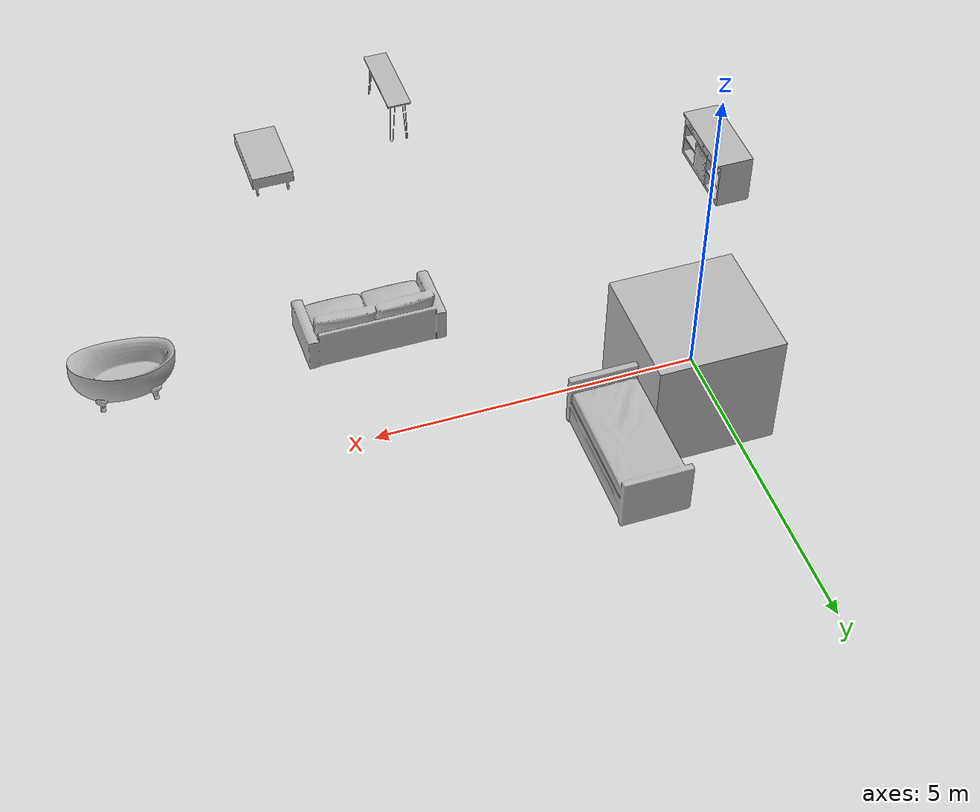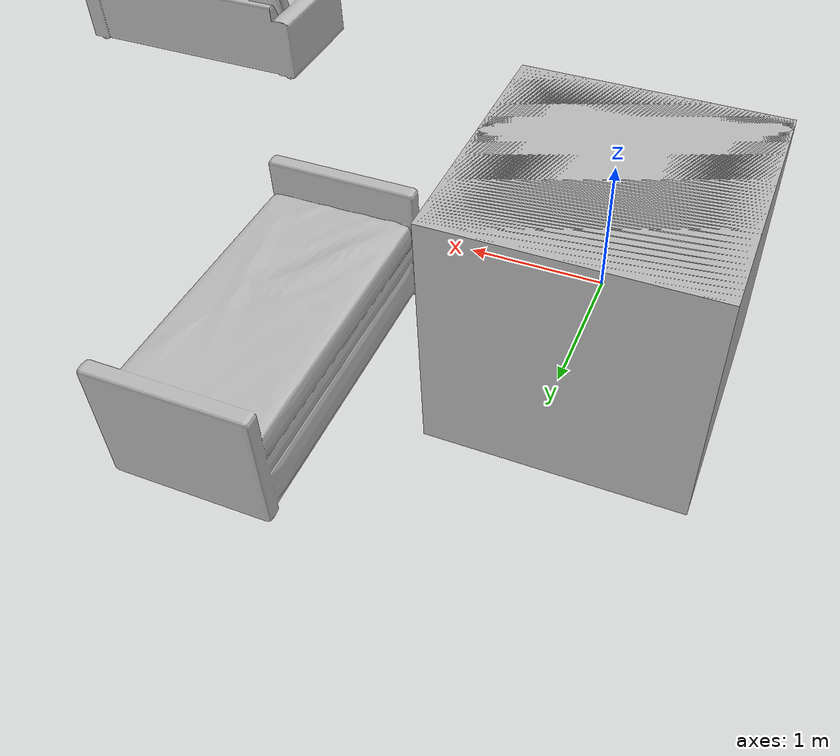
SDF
<sdf version="1.6">
 <world name="generation_fznnc8kb2ps3_world_1">
  <include><uri>model://sun</uri></include>
  <model name="DaybedSets_O4f4dc74f7857_lod0_5">
   <include>
    <uri>model://DaybedSets_O4f4dc74f7857_lod0</uri>
    <pose>1.7000000000000002 1.6000000596046449 0.0 0.0 0.0 0.0</pose>
    <static>true</static>
   </include>
  </model>
  <model name="Sofas_Oae268ae3eb42_lod0_10">
   <include>
    <uri>model://Sofas_Oae268ae3eb42_lod0</uri>
    <pose>4.449963760375977 -2.080874240398407 0.0 0.0 0.0 0.0</pose>
    <static>true</static>
   </include>
  </model>
  <model name="CoffeeTables_O73b15e86a72b_lod0_12">
   <include>
    <uri>model://CoffeeTables_O73b15e86a72b_lod0</uri>
    <pose>5.012157693505287 -6.198936772346497 0.0 0.0 0.0 4.71</pose>
    <static>true</static>
   </include>
  </model>
  <model name="SofaTables_O37bb89b6452b_lod0_13">
   <include>
    <uri>model://SofaTables_O37bb89b6452b_lod0</uri>
    <pose>2.6523663938045505 -6.89942433834076 0.0 0.0 0.0 1.57</pose>
    <static>true</static>
   </include>
  </model>
  <model name="Bathtub_82fff6c60a44_lod0_18">
   <include>
    <uri>model://Bathtub_82fff6c60a44_lod0</uri>
    <pose>8.251596927642822 -2.050035554170609 0.0 0.0 0.0 1.5699999999999994</pose>
    <static>true</static>
   </include>
  </model>
  <model name="CounterWithStorage_f5c803ebd10e_lod0_23">
   <include>
    <uri>model://CounterWithStorage_f5c803ebd10e_lod0</uri>
    <pose>-1.9966953992843628 -3.7570008039474487 0.0 0.0 0.0 1.57</pose>
    <static>true</static>
   </include>
  </model>
  <model name="wall_0">
   <include><uri>model://generation_fznnc8kb2ps3_world_1/wall_0</uri><static>true</static></include>
  </model>
  <model name="wall_1">
   <include><uri>model://generation_fznnc8kb2ps3_world_1/wall_1</uri><static>true</static></include>
  </model>
  <model name="wall_10">
   <include><uri>model://generation_fznnc8kb2ps3_world_1/wall_10</uri><static>true</static></include>
  </model>
  <model name="wall_11">
   <include><uri>model://generation_fznnc8kb2ps3_world_1/wall_11</uri><static>true</static></include>
  </model>
  <model name="wall_12">
   <include><uri>model://generation_fznnc8kb2ps3_world_1/wall_12</uri><static>true</static></include>
  </model>
  <model name="wall_13">
   <include><uri>model://generation_fznnc8kb2ps3_world_1/wall_13</uri><static>true</static></include>
  </model>
  <model name="wall_14">
   <include><uri>model://generation_fznnc8kb2ps3_world_1/wall_14</uri><static>true</static></include>
  </model>
  <model name="wall_15">
   <include><uri>model://generation_fznnc8kb2ps3_world_1/wall_15</uri><static>true</static></include>
  </model>
  <model name="floor_Bedroom">
   <include><uri>model://generation_fznnc8kb2ps3_world_1/floor_Bedroom</uri><static>true</static></include>
  </model>
  <model name="floor_Living room">
   <include><uri>model://generation_fznnc8kb2ps3_world_1/floor_Living room</uri><static>true</static></include>
  </model>
  <model name="floor_Bathroom">
   <include><uri>model://generation_fznnc8kb2ps3_world_1/floor_Bathroom</uri><static>true</static></include>
  </model>
  <model name="floor_Kitchen">
   <include><uri>model://generation_fznnc8kb2ps3_world_1/floor_Kitchen</uri><static>true</static></include>
  </model>
 </world>
</sdf>

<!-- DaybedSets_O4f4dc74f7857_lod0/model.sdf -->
<sdf version="1.6">
	<model name="DaybedSets_O4f4dc74f7857_lod0">
		<link name="main_link">
			<visual name="visual_RootNode">
				<geometry>
					<mesh>
						<uri>model://DaybedSets_O4f4dc74f7857_lod0/meshes/visual_RootNode.dae</uri>
					</mesh>
				</geometry>
			</visual>
			<collision name="collision_RootNode_lod0_0">
				<geometry>
					<mesh>
						<uri>model://DaybedSets_O4f4dc74f7857_lod0/meshes/collision_RootNode_lod0_0.dae</uri>
					</mesh>
				</geometry>
			</collision>
		</link>
	</model>
</sdf>

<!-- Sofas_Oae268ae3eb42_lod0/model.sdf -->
<sdf version="1.6">
	<model name="Sofas_Oae268ae3eb42_lod0">
		<link name="main_link">
			<visual name="visual_RootNode">
				<geometry>
					<mesh>
						<uri>model://Sofas_Oae268ae3eb42_lod0/meshes/visual_RootNode.dae</uri>
					</mesh>
				</geometry>
			</visual>
			<collision name="collision_RootNode_lod0_0">
				<geometry>
					<mesh>
						<uri>model://Sofas_Oae268ae3eb42_lod0/meshes/collision_RootNode_lod0_0.dae</uri>
					</mesh>
				</geometry>
			</collision>
		</link>
	</model>
</sdf>

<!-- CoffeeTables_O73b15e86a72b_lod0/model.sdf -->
<sdf version="1.6">
	<model name="CoffeeTables_O73b15e86a72b_lod0">
		<link name="main_link">
			<visual name="visual_RootNode">
				<geometry>
					<mesh>
						<uri>model://CoffeeTables_O73b15e86a72b_lod0/meshes/visual_RootNode.dae</uri>
					</mesh>
				</geometry>
			</visual>
			<collision name="collision_RootNode_lod0_0">
				<geometry>
					<mesh>
						<uri>model://CoffeeTables_O73b15e86a72b_lod0/meshes/collision_RootNode_lod0_0.dae</uri>
					</mesh>
				</geometry>
			</collision>
		</link>
	</model>
</sdf>

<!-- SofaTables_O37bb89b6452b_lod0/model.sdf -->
<sdf version="1.6">
	<model name="SofaTables_O37bb89b6452b_lod0">
		<link name="main_link">
			<visual name="visual_RootNode">
				<geometry>
					<mesh>
						<uri>model://SofaTables_O37bb89b6452b_lod0/meshes/visual_RootNode.dae</uri>
					</mesh>
				</geometry>
			</visual>
			<collision name="collision_RootNode_lod0_0">
				<geometry>
					<mesh>
						<uri>model://SofaTables_O37bb89b6452b_lod0/meshes/collision_RootNode_lod0_0.dae</uri>
					</mesh>
				</geometry>
			</collision>
		</link>
	</model>
</sdf>

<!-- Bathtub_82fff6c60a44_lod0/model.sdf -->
<sdf version='1.6'>
  <model name='01_Bathtub'>
    <link name='body'>
	  <inertial>
        <mass>60</mass>
        <pose frame=''>0 0 0 0 0 0</pose>
        <inertia>
          <ixx>15.88898</ixx>
          <ixy>0</ixy>
          <ixz>0</ixz>
          <iyy>5.8269799</iyy>
          <iyz>0</iyz>
          <izz>15.538</izz>
        </inertia>
      </inertial>
      <pose frame=''>0 0 0 0 -0 0</pose>
      <self_collide>0</self_collide>
      <kinematic>0</kinematic>
      <gravity>1</gravity>
      <visual name='visual'>
        <geometry>
          <mesh>
            <uri>model://Bathtub_82fff6c60a44_lod0/meshes/visual_LowPoly_01_Bathtub.dae</uri>
          </mesh>
        </geometry>
		<meta> <layer> 1 </layer></meta>
      </visual>
      <collision name='collision_0'>
        <laser_retro>0</laser_retro>
        <max_contacts>10</max_contacts>
        <pose frame=''>0 0 0 0 -0 0</pose>
        <geometry>
          <mesh>
            <uri>model://Bathtub_82fff6c60a44_lod0/meshes/collision_01_Bathtub.dae</uri>
            <scale>1 1 1</scale>
          </mesh>
        </geometry>
		<surface>
          <friction>
            <ode>
              <mu>0.6</mu>
              <mu2>0.6</mu2>
              <fdir1>0 0 0</fdir1>
              <slip1>0</slip1>
              <slip2>0</slip2>
            </ode>
            <torsional>
              <coefficient>1</coefficient>
              <patch_radius>0</patch_radius>
              <surface_radius>0</surface_radius>
              <use_patch_radius>1</use_patch_radius>
              <ode>
                <slip>0</slip>
              </ode>
            </torsional>
          </friction>
        </surface>
      </collision>
    </link>
    <static>true</static>
  </model>
</sdf>

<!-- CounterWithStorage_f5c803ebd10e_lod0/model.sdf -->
<sdf version='1.6'>
  <model name='19_CounterWithStorage'>
    <link name='body'>
	  <inertial>
        <mass>40</mass>
        <pose frame=''>0 0 0 0 0 0</pose>
        <inertia>
          <ixx>3.35908</ixx>
          <ixy>0</ixy>
          <ixz>0</ixz>
          <iyy>8.22596</iyy>
          <iyz>0</iyz>
          <izz>6.57378</izz>
        </inertia>
      </inertial>
      <pose frame=''>0 0 0 0 -0 0</pose>
      <self_collide>0</self_collide>
      <kinematic>0</kinematic>
      <gravity>1</gravity>
      <visual name='visual'>
        <geometry>
          <mesh>
            <uri>model://CounterWithStorage_f5c803ebd10e_lod0/meshes/visual_LowPoly_19_CounterWithStorage.dae</uri>
          </mesh>
        </geometry>
		<meta> <layer> 1 </layer></meta>
      </visual>
      <collision name='collision_0'>
        <laser_retro>0</laser_retro>
        <max_contacts>10</max_contacts>
        <pose frame=''>0 0 0 0 -0 0</pose>
        <geometry>
          <mesh>
            <uri>model://CounterWithStorage_f5c803ebd10e_lod0/meshes/collision_19_CounterWithStorage.dae</uri>
            <scale>1 1 1</scale>
          </mesh>
        </geometry>
		<surface>
          <friction>
            <ode>
              <mu>0.6</mu>
              <mu2>0.6</mu2>
              <fdir1>0 0 0</fdir1>
              <slip1>0</slip1>
              <slip2>0</slip2>
            </ode>
            <torsional>
              <coefficient>1</coefficient>
              <patch_radius>0</patch_radius>
              <surface_radius>0</surface_radius>
              <use_patch_radius>1</use_patch_radius>
              <ode>
                <slip>0</slip>
              </ode>
            </torsional>
          </friction>
        </surface>
      </collision>
    </link>
    <static>true</static>
  </model>
</sdf>

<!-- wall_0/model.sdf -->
<sdf version="1.6">
  <model name="wall_0">
    <static>true</static>
    <link name="link">
      <collision name="collision">
        <pose>0 0 0 0 0 0</pose>
        <geometry>
          <mesh>
            <uri>model://generation_fznnc8kb2ps3_world_1/wall_0/meshes/wall_0.dae</uri>
            <scale>1 1 1</scale>
          </mesh>
        </geometry>
      </collision>
      <visual name="visual">
        <meta>
          <layer>0</layer>
        </meta>
        <pose>0 0 0 0 0 0</pose>
        <geometry>
          <mesh>
            <uri>model://generation_fznnc8kb2ps3_world_1/wall_0/meshes/wall_0.dae</uri>
            <scale>1 1 1</scale>
          </mesh>
        </geometry>
      </visual>
    </link>
  </model>
</sdf>

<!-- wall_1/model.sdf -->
<sdf version="1.6">
  <model name="wall_1">
    <static>true</static>
    <link name="link">
      <collision name="collision">
        <pose>0 0 0 0 0 0</pose>
        <geometry>
          <mesh>
            <uri>model://generation_fznnc8kb2ps3_world_1/wall_1/meshes/wall_1.dae</uri>
            <scale>1 1 1</scale>
          </mesh>
        </geometry>
      </collision>
      <visual name="visual">
        <meta>
          <layer>0</layer>
        </meta>
        <pose>0 0 0 0 0 0</pose>
        <geometry>
          <mesh>
            <uri>model://generation_fznnc8kb2ps3_world_1/wall_1/meshes/wall_1.dae</uri>
            <scale>1 1 1</scale>
          </mesh>
        </geometry>
      </visual>
    </link>
  </model>
</sdf>

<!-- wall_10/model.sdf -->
<sdf version="1.6">
  <model name="wall_10">
    <static>true</static>
    <link name="link">
      <collision name="collision">
        <pose>0 0 0 0 0 0</pose>
        <geometry>
          <mesh>
            <uri>model://generation_fznnc8kb2ps3_world_1/wall_10/meshes/wall_10.dae</uri>
            <scale>1 1 1</scale>
          </mesh>
        </geometry>
      </collision>
      <visual name="visual">
        <meta>
          <layer>0</layer>
        </meta>
        <pose>0 0 0 0 0 0</pose>
        <geometry>
          <mesh>
            <uri>model://generation_fznnc8kb2ps3_world_1/wall_10/meshes/wall_10.dae</uri>
            <scale>1 1 1</scale>
          </mesh>
        </geometry>
      </visual>
    </link>
  </model>
</sdf>

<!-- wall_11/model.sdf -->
<sdf version="1.6">
  <model name="wall_11">
    <static>true</static>
    <link name="link">
      <collision name="collision">
        <pose>0 0 0 0 0 0</pose>
        <geometry>
          <mesh>
            <uri>model://generation_fznnc8kb2ps3_world_1/wall_11/meshes/wall_11.dae</uri>
            <scale>1 1 1</scale>
          </mesh>
        </geometry>
      </collision>
      <visual name="visual">
        <meta>
          <layer>0</layer>
        </meta>
        <pose>0 0 0 0 0 0</pose>
        <geometry>
          <mesh>
            <uri>model://generation_fznnc8kb2ps3_world_1/wall_11/meshes/wall_11.dae</uri>
            <scale>1 1 1</scale>
          </mesh>
        </geometry>
      </visual>
    </link>
  </model>
</sdf>

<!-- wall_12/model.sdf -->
<sdf version="1.6">
  <model name="wall_12">
    <static>true</static>
    <link name="link">
      <collision name="collision">
        <pose>0 0 0 0 0 0</pose>
        <geometry>
          <mesh>
            <uri>model://generation_fznnc8kb2ps3_world_1/wall_12/meshes/wall_12.dae</uri>
            <scale>1 1 1</scale>
          </mesh>
        </geometry>
      </collision>
      <visual name="visual">
        <meta>
          <layer>0</layer>
        </meta>
        <pose>0 0 0 0 0 0</pose>
        <geometry>
          <mesh>
            <uri>model://generation_fznnc8kb2ps3_world_1/wall_12/meshes/wall_12.dae</uri>
            <scale>1 1 1</scale>
          </mesh>
        </geometry>
      </visual>
    </link>
  </model>
</sdf>

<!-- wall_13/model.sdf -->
<sdf version="1.6">
  <model name="wall_13">
    <static>true</static>
    <link name="link">
      <collision name="collision">
        <pose>0 0 0 0 0 0</pose>
        <geometry>
          <mesh>
            <uri>model://generation_fznnc8kb2ps3_world_1/wall_13/meshes/wall_13.dae</uri>
            <scale>1 1 1</scale>
          </mesh>
        </geometry>
      </collision>
      <visual name="visual">
        <meta>
          <layer>0</layer>
        </meta>
        <pose>0 0 0 0 0 0</pose>
        <geometry>
          <mesh>
            <uri>model://generation_fznnc8kb2ps3_world_1/wall_13/meshes/wall_13.dae</uri>
            <scale>1 1 1</scale>
          </mesh>
        </geometry>
      </visual>
    </link>
  </model>
</sdf>

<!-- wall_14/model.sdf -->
<sdf version="1.6">
  <model name="wall_14">
    <static>true</static>
    <link name="link">
      <collision name="collision">
        <pose>0 0 0 0 0 0</pose>
        <geometry>
          <mesh>
            <uri>model://generation_fznnc8kb2ps3_world_1/wall_14/meshes/wall_14.dae</uri>
            <scale>1 1 1</scale>
          </mesh>
        </geometry>
      </collision>
      <visual name="visual">
        <meta>
          <layer>0</layer>
        </meta>
        <pose>0 0 0 0 0 0</pose>
        <geometry>
          <mesh>
            <uri>model://generation_fznnc8kb2ps3_world_1/wall_14/meshes/wall_14.dae</uri>
            <scale>1 1 1</scale>
          </mesh>
        </geometry>
      </visual>
    </link>
  </model>
</sdf>

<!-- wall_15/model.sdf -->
<sdf version="1.6">
  <model name="wall_15">
    <static>true</static>
    <link name="link">
      <collision name="collision">
        <pose>0 0 0 0 0 0</pose>
        <geometry>
          <mesh>
            <uri>model://generation_fznnc8kb2ps3_world_1/wall_15/meshes/wall_15.dae</uri>
            <scale>1 1 1</scale>
          </mesh>
        </geometry>
      </collision>
      <visual name="visual">
        <meta>
          <layer>0</layer>
        </meta>
        <pose>0 0 0 0 0 0</pose>
        <geometry>
          <mesh>
            <uri>model://generation_fznnc8kb2ps3_world_1/wall_15/meshes/wall_15.dae</uri>
            <scale>1 1 1</scale>
          </mesh>
        </geometry>
      </visual>
    </link>
  </model>
</sdf>

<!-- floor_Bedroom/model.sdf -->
<sdf version="1.6">
  <model name="floor_Bedroom">
    <static>true</static>
    <link name="link">
      <collision name="collision">
        <pose>0 0 0 0 0 0</pose>
        <geometry>
          <mesh>
            <uri>model://generation_fznnc8kb2ps3_world_1/floor_Bedroom/meshes/floor_Bedroom.dae</uri>
            <scale>1 1 1</scale>
          </mesh>
        </geometry>
      </collision>
      <visual name="visual">
        <meta>
          <layer>0</layer>
        </meta>
        <pose>0 0 0 0 0 0</pose>
        <geometry>
          <mesh>
            <uri>model://generation_fznnc8kb2ps3_world_1/floor_Bedroom/meshes/floor_Bedroom.dae</uri>
            <scale>1 1 1</scale>
          </mesh>
        </geometry>
      </visual>
    </link>
  </model>
</sdf>

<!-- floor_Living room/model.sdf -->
<sdf version="1.6">
  <model name="floor_Living room">
    <static>true</static>
    <link name="link">
      <collision name="collision">
        <pose>0 0 0 0 0 0</pose>
        <geometry>
          <mesh>
            <uri>model://generation_fznnc8kb2ps3_world_1/floor_Living room/meshes/floor_Living room.dae</uri>
            <scale>1 1 1</scale>
          </mesh>
        </geometry>
      </collision>
      <visual name="visual">
        <meta>
          <layer>0</layer>
        </meta>
        <pose>0 0 0 0 0 0</pose>
        <geometry>
          <mesh>
            <uri>model://generation_fznnc8kb2ps3_world_1/floor_Living room/meshes/floor_Living room.dae</uri>
            <scale>1 1 1</scale>
          </mesh>
        </geometry>
      </visual>
    </link>
  </model>
</sdf>

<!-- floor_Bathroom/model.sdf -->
<sdf version="1.6">
  <model name="floor_Bathroom">
    <static>true</static>
    <link name="link">
      <collision name="collision">
        <pose>0 0 0 0 0 0</pose>
        <geometry>
          <mesh>
            <uri>model://generation_fznnc8kb2ps3_world_1/floor_Bathroom/meshes/floor_Bathroom.dae</uri>
            <scale>1 1 1</scale>
          </mesh>
        </geometry>
      </collision>
      <visual name="visual">
        <meta>
          <layer>0</layer>
        </meta>
        <pose>0 0 0 0 0 0</pose>
        <geometry>
          <mesh>
            <uri>model://generation_fznnc8kb2ps3_world_1/floor_Bathroom/meshes/floor_Bathroom.dae</uri>
            <scale>1 1 1</scale>
          </mesh>
        </geometry>
      </visual>
    </link>
  </model>
</sdf>

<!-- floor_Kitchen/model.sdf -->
<sdf version="1.6">
  <model name="floor_Kitchen">
    <static>true</static>
    <link name="link">
      <collision name="collision">
        <pose>0 0 0 0 0 0</pose>
        <geometry>
          <mesh>
            <uri>model://generation_fznnc8kb2ps3_world_1/floor_Kitchen/meshes/floor_Kitchen.dae</uri>
            <scale>1 1 1</scale>
          </mesh>
        </geometry>
      </collision>
      <visual name="visual">
        <meta>
          <layer>0</layer>
        </meta>
        <pose>0 0 0 0 0 0</pose>
        <geometry>
          <mesh>
            <uri>model://generation_fznnc8kb2ps3_world_1/floor_Kitchen/meshes/floor_Kitchen.dae</uri>
            <scale>1 1 1</scale>
          </mesh>
        </geometry>
      </visual>
    </link>
  </model>
</sdf>
